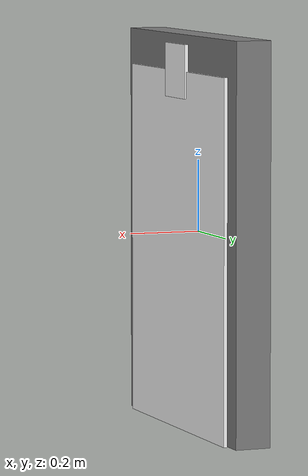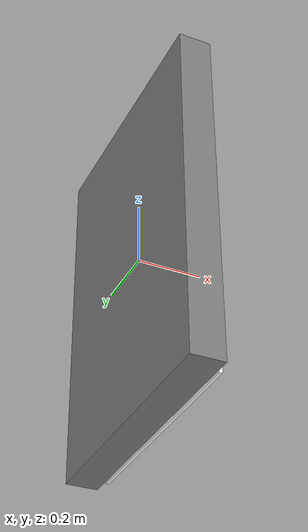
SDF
<?xml version="1.0" ?>
<sdf version="1.8">
  <model name="poster_board_5">
    <static>true</static>
    <link name="link">
      <!-- Frame (Medium: 0.8 width x 1.1 height) -->
      <visual name="frame">
        <geometry><box><size>0.1 0.8 1.1</size></box></geometry>
        <material><ambient>0.5 0.5 0.5 1</ambient><diffuse>0.5 0.5 0.5 1</diffuse></material>
      </visual>

      <!-- Poster Content (0.7 x 1.0) -->
      <visual name="poster">
        <pose>0.06 0 -0.05 0 0 0</pose>
        <geometry><box><size>0.01 0.7 1.0</size></box></geometry>
        <material>
          <ambient>1 1 1 1</ambient><diffuse>1 1 1 1</diffuse>
          <pbr><metal><albedo_map>materials/textures/poster5.jpeg</albedo_map></metal></pbr>
        </material>
      </visual>

      <!-- ArUco Marker (Top Edge) -->
      <visual name="aruco_marker">
        <pose>0.065 0 0.45 0 0 0</pose>
        <geometry><box><size>0.01 0.15 0.15</size></box></geometry>
        <material>
          <ambient>1 1 1 1</ambient><diffuse>1 1 1 1</diffuse>
          <pbr><metal><albedo_map>materials/textures/aruco_marker.png</albedo_map></metal></pbr>
        </material>
      </visual>

       <collision name="collision">
         <geometry><box><size>0.1 0.8 1.1</size></box></geometry>
      </collision>
    </link>
  </model>
</sdf>
